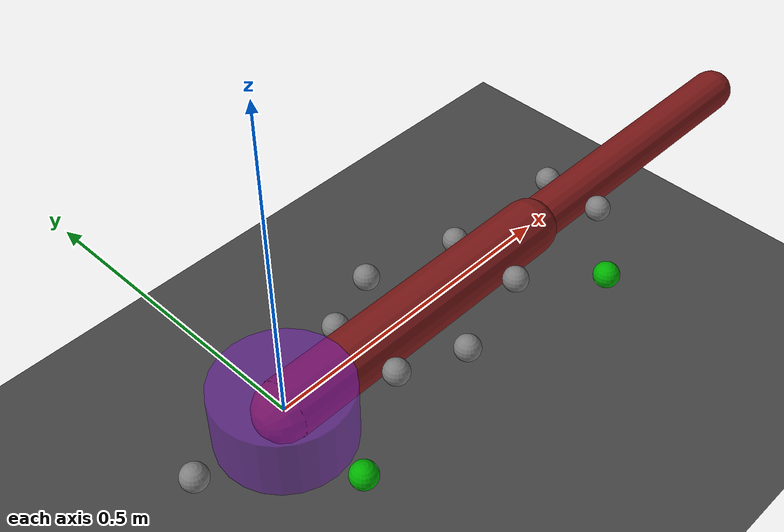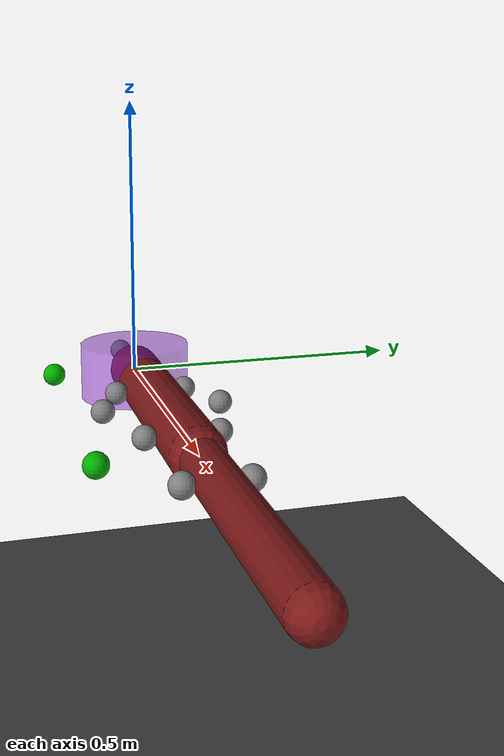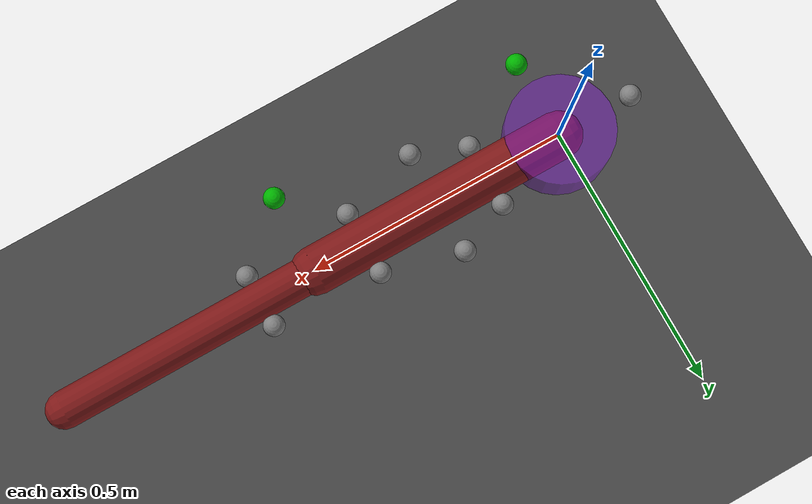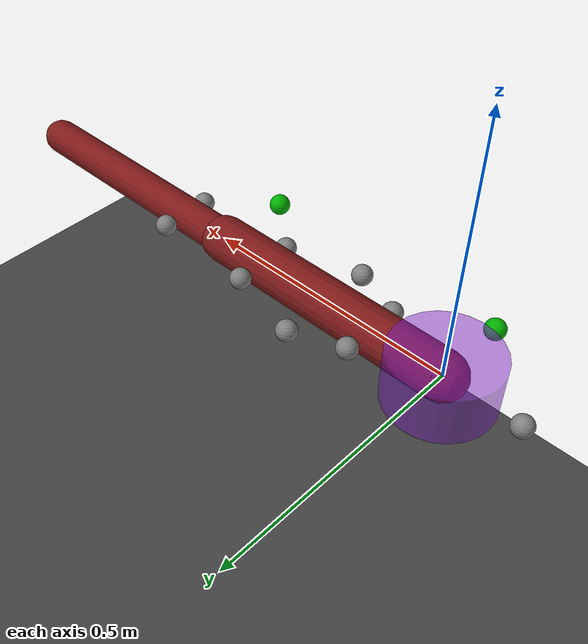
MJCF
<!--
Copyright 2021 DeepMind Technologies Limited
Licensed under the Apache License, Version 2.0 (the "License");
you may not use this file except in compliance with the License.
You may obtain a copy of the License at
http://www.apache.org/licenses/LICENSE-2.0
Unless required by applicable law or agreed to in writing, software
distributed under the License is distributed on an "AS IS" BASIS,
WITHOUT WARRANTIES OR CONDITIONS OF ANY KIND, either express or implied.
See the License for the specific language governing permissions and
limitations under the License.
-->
<mujoco model="2-link 6-muscle arm">
  <option timestep="0.005" iterations="50" solver="Newton" tolerance="1e-10"/>

  <visual>
    <rgba haze=".3 .3 .3 1"/>
  </visual>

  <default>
    <joint type="hinge" pos="0 0 0" axis="0 0 1" limited="true" range="0 120" damping="0.1"/>
    <muscle ctrllimited="true" ctrlrange="0 1"/>
    <default class="collision">
      <geom type="mesh" group="3"/>
    </default>
  </default>

  <asset>
    <texture type="skybox" builtin="gradient" rgb1="0.6 0.6 0.6" rgb2="0 0 0" width="512" height="512"/>

    <texture name="texplane" type="2d" builtin="checker" rgb1=".25 .25 .25" rgb2=".3 .3 .3" width="512" height="512" mark="cross" markrgb=".8 .8 .8"/>

    <material name="matplane" reflectance="0.3" texture="texplane" texrepeat="1 1" texuniform="true"/>

    <mesh name="forearm_link" file="forearm_link.stl"/>
  </asset>

  <worldbody>
    <geom name="floor" pos="0 0 -0.5" size="0 0 1" type="plane" material="matplane"/>

    <light directional="true" diffuse=".8 .8 .8" specular=".2 .2 .2" pos="0 0 5" dir="0 0 -1"/>

    <site name="s0" pos="-0.15 0 0" size="0.02"/>
    <site name="x0" pos="0 -0.15 0" size="0.02" rgba="0 .7 0 1" group="1"/>

    <body pos="0 0 0">
      <geom name="upper arm" type="capsule" size="0.045" fromto="0 0 0  0.5 0 0" rgba=".5 .1 .1 1"/>
      <joint name="shoulder"/>
      <geom name="shoulder" type="cylinder" pos="0 0 0" size=".1 .05" rgba=".5 .1 .8 .5" mass="0" group="1"/>

      <site name="s1" pos="0.15 0.06 0" size="0.02"/>
      <site name="s2" pos="0.15 -0.06 0" size="0.02"/>
      <site name="s3" pos="0.4 0.06 0" size="0.02"/>
      <site name="s4" pos="0.4 -0.06 0" size="0.02"/>
      <site name="s5" pos="0.25 0.1 0" size="0.02"/>
      <site name="s6" pos="0.25 -0.1 0" size="0.02"/>
      <site name="x1" pos="0.5 -0.15 0" size="0.02" rgba="0 .7 0 1" group="1"/>

      <body pos="0.5 0 0">
        <geom name="forearm" type="capsule" size="0.035" fromto="0 0 0  0.5 0 0" rgba=".5 .1 .1 1"/>
        <joint name="elbow"/>
        <geom class="collision" name="elbow" mesh="forearm_link"/>

        <site name="s7" pos="0.11 0.05 0" size="0.02"/>
        <site name="s8" pos="0.11 -0.05 0" size="0.02"/>

      </body>
    </body>
  </worldbody>

</mujoco>
/home/don-congrejo/.mujoco/mujoco-3.0.0
/home/don-congrejo/.mujoco/mujoco-3.3.0
